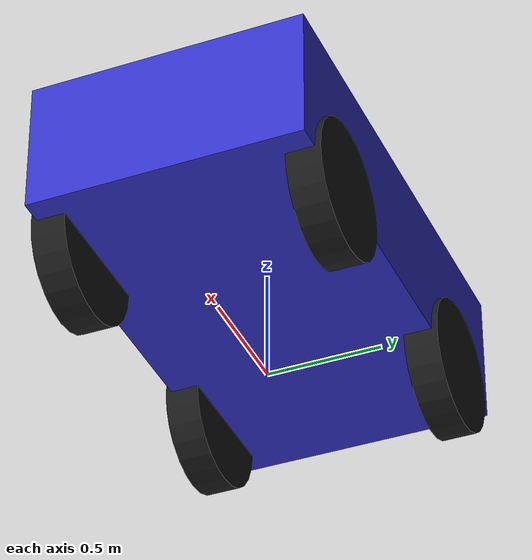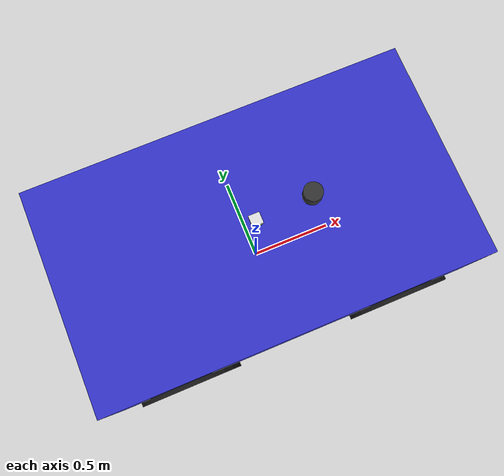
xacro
<?xml version="1.0"?>
<robot name="exia_ground" xmlns:xacro="http://www.ros.org/wiki/xacro">

  <xacro:arg name="config_path" default=""/>

  <xacro:arg name="lidar_horizontal_samples" default="360"/>
  <xacro:arg name="lidar_vertical_samples" default="16"/>
  <xacro:arg name="lidar_vertical_fov_min" default="-0.261799"/>
  <xacro:arg name="lidar_vertical_fov_max" default="0.261799"/>
  <xacro:arg name="lidar_range_min" default="1.0"/>
  <xacro:arg name="lidar_range_max" default="100.0"/>
  <xacro:arg name="lidar_update_rate" default="10"/>

  <link name="base_footprint"/>

  <link name="base_link">
    <visual>
      <origin xyz="0 0 0" rpy="0 0 0"/>
      <geometry>
        <box size="2.11 1.2 0.6"/>
      </geometry>
      <material name="blue">
        <color rgba="0.2 0.2 0.8 1"/>
      </material>
    </visual>

    <collision>
      <origin xyz="0 0 0" rpy="0 0 0"/>
      <geometry>
        <box size="2.11 1.2 0.6"/>
      </geometry>
    </collision>

    <inertial>
      <mass value="200.0"/>
      <origin xyz="0 0 0" rpy="0 0 0"/>
      <inertia ixx="30.0" ixy="0" ixz="0"
               iyy="80.2" iyz="0"
               izz="98.2"/>
    </inertial>
  </link>

  <joint name="base_joint" type="fixed">
    <parent link="base_footprint"/>
    <child link="base_link"/>
    <origin xyz="0 0 0.6" rpy="0 0 0"/>
  </joint>

  <link name="front_left_steer_link">
    <visual>
      <origin xyz="0 0 0" rpy="0 0 0"/>
      <geometry>
        <cylinder radius="0.05" length="0.08"/>
      </geometry>
      <material name="grey">
        <color rgba="0.5 0.5 0.5 1"/>
      </material>
    </visual>

    <collision>
      <origin xyz="0 0 0" rpy="0 0 0"/>
      <geometry>
        <cylinder radius="0.05" length="0.08"/>
      </geometry>
    </collision>

    <inertial>
      <mass value="2.0"/>
      <origin xyz="0 0 0" rpy="0 0 0"/>
      <inertia ixx="0.001" ixy="0" ixz="0"
               iyy="0.001" iyz="0"
               izz="0.001"/>
    </inertial>
  </link>

  <link name="front_right_steer_link">
    <visual>
      <origin xyz="0 0 0" rpy="0 0 0"/>
      <geometry>
        <cylinder radius="0.05" length="0.08"/>
      </geometry>
      <material name="grey">
        <color rgba="0.5 0.5 0.5 1"/>
      </material>
    </visual>

    <collision>
      <origin xyz="0 0 0" rpy="0 0 0"/>
      <geometry>
        <cylinder radius="0.05" length="0.08"/>
      </geometry>
    </collision>

    <inertial>
      <mass value="2.0"/>
      <origin xyz="0 0 0" rpy="0 0 0"/>
      <inertia ixx="0.001" ixy="0" ixz="0"
               iyy="0.001" iyz="0"
               izz="0.001"/>
    </inertial>
  </link>

  <joint name="front_left_steer_joint" type="revolute">
    <parent link="base_link"/>
    <child link="front_left_steer_link"/>
    <origin xyz="0.65 0.55 -0.3" rpy="0 0 0"/>
    <axis xyz="0 0 1"/>
    <limit lower="-0.6" upper="0.6" effort="2000.0" velocity="3.0"/>
    <dynamics damping="0.0" friction="0.0"/>
  </joint>

  <joint name="front_right_steer_joint" type="revolute">
    <parent link="base_link"/>
    <child link="front_right_steer_link"/>
    <origin xyz="0.65 -0.55 -0.3" rpy="0 0 0"/>
    <axis xyz="0 0 1"/>
    <limit lower="-0.6" upper="0.6" effort="2000.0" velocity="3.0"/>
    <dynamics damping="0.0" friction="0.0"/>
  </joint>

  <link name="front_left_wheel">
    <visual>
      <origin xyz="0 0 0" rpy="1.5708 0 0"/>
      <geometry>
        <cylinder radius="0.3" length="0.15"/>
      </geometry>
      <material name="black">
        <color rgba="0.1 0.1 0.1 1"/>
      </material>
    </visual>

    <collision>
      <origin xyz="0 0 0" rpy="1.5708 0 0"/>
      <geometry>
        <cylinder radius="0.3" length="0.15"/>
      </geometry>
    </collision>

    <inertial>
      <mass value="10.0"/>
      <origin xyz="0 0 0" rpy="1.5708 0 0"/>
      <inertia ixx="0.244" ixy="0" ixz="0"
               iyy="0.244" iyz="0"
               izz="0.45"/>
    </inertial>
  </link>

  <joint name="front_left_wheel_joint" type="continuous">
    <parent link="front_left_steer_link"/>
    <child link="front_left_wheel"/>
    <origin xyz="0 0 0" rpy="0 0 0"/>
    <axis xyz="0 1 0"/>
    <dynamics damping="0.1" friction="0.1"/>
  </joint>

  <link name="front_right_wheel">
    <visual>
      <origin xyz="0 0 0" rpy="1.5708 0 0"/>
      <geometry>
        <cylinder radius="0.3" length="0.15"/>
      </geometry>
      <material name="black">
        <color rgba="0.1 0.1 0.1 1"/>
      </material>
    </visual>

    <collision>
      <origin xyz="0 0 0" rpy="1.5708 0 0"/>
      <geometry>
        <cylinder radius="0.3" length="0.15"/>
      </geometry>
    </collision>

    <inertial>
      <mass value="10.0"/>
      <origin xyz="0 0 0" rpy="1.5708 0 0"/>
      <inertia ixx="0.244" ixy="0" ixz="0"
               iyy="0.244" iyz="0"
               izz="0.45"/>
    </inertial>
  </link>

  <joint name="front_right_wheel_joint" type="continuous">
    <parent link="front_right_steer_link"/>
    <child link="front_right_wheel"/>
    <origin xyz="0 0 0" rpy="0 0 0"/>
    <axis xyz="0 1 0"/>
    <dynamics damping="0.1" friction="0.1"/>
  </joint>

  <link name="rear_left_wheel">
    <visual>
      <origin xyz="0 0 0" rpy="1.5708 0 0"/>
      <geometry>
        <cylinder radius="0.3" length="0.15"/>
      </geometry>
      <material name="black">
        <color rgba="0.1 0.1 0.1 1"/>
      </material>
    </visual>

    <collision>
      <origin xyz="0 0 0" rpy="1.5708 0 0"/>
      <geometry>
        <cylinder radius="0.3" length="0.15"/>
      </geometry>
    </collision>

    <inertial>
      <mass value="10.0"/>
      <origin xyz="0 0 0" rpy="1.5708 0 0"/>
      <inertia ixx="0.244" ixy="0" ixz="0"
               iyy="0.244" iyz="0"
               izz="0.45"/>
    </inertial>
  </link>

  <joint name="rear_left_wheel_joint" type="continuous">
    <parent link="base_link"/>
    <child link="rear_left_wheel"/>
    <origin xyz="-0.65 0.55 -0.3" rpy="0 0 0"/>
    <axis xyz="0 1 0"/>
    <dynamics damping="0.01" friction="0.0"/>
  </joint>

  <link name="rear_right_wheel">
    <visual>
      <origin xyz="0 0 0" rpy="1.5708 0 0"/>
      <geometry>
        <cylinder radius="0.3" length="0.15"/>
      </geometry>
      <material name="black">
        <color rgba="0.1 0.1 0.1 1"/>
      </material>
    </visual>

    <collision>
      <origin xyz="0 0 0" rpy="1.5708 0 0"/>
      <geometry>
        <cylinder radius="0.3" length="0.15"/>
      </geometry>
    </collision>

    <inertial>
      <mass value="10.0"/>
      <origin xyz="0 0 0" rpy="1.5708 0 0"/>
      <inertia ixx="0.244" ixy="0" ixz="0"
               iyy="0.244" iyz="0"
               izz="0.45"/>
    </inertial>
  </link>

  <joint name="rear_right_wheel_joint" type="continuous">
    <parent link="base_link"/>
    <child link="rear_right_wheel"/>
    <origin xyz="-0.65 -0.55 -0.3" rpy="0 0 0"/>
    <axis xyz="0 1 0"/>
    <dynamics damping="0.01" friction="0.0"/>
  </joint>

  <link name="brake_actuator_link">
    <visual>
      <origin xyz="0 0 0" rpy="0 0 0"/>
      <geometry>
        <box size="0.15 0.2 0.1"/>
      </geometry>
      <material name="red">
        <color rgba="0.8 0.2 0.2 1"/>
      </material>
    </visual>

    <collision>
      <origin xyz="0 0 0" rpy="0 0 0"/>
      <geometry>
        <box size="0.15 0.2 0.1"/>
      </geometry>
    </collision>

    <inertial>
      <mass value="2.0"/>
      <origin xyz="0 0 0" rpy="0 0 0"/>
      <inertia ixx="0.001" ixy="0" ixz="0"
               iyy="0.001" iyz="0"
               izz="0.001"/>
    </inertial>
  </link>

  <joint name="brake_joint" type="revolute">
    <parent link="base_link"/>
    <child link="brake_actuator_link"/>
    <origin xyz="-0.5 0 -0.15" rpy="0 0 0"/>
    <axis xyz="0 1 0"/>
    <limit lower="0.0" upper="1.0" effort="2000.0" velocity="5.0"/>
    <dynamics damping="0.1" friction="0.0"/>
  </joint>

  <link name="imu_link">
    <visual>
      <origin xyz="0 0 0" rpy="0 0 0"/>
      <geometry>
        <box size="0.05 0.05 0.02"/>
      </geometry>
      <material name="green">
        <color rgba="0.2 0.8 0.2 1"/>
      </material>
    </visual>

    <collision>
      <origin xyz="0 0 0" rpy="0 0 0"/>
      <geometry>
        <box size="0.05 0.05 0.02"/>
      </geometry>
    </collision>

    <inertial>
      <mass value="0.05"/>
      <origin xyz="0 0 0" rpy="0 0 0"/>
      <inertia ixx="0.00001" ixy="0" ixz="0"
               iyy="0.00001" iyz="0"
               izz="0.00001"/>
    </inertial>
  </link>

  <joint name="imu_joint" type="fixed">
    <parent link="base_link"/>
    <child link="imu_link"/>
    <origin xyz="0 0 0.31" rpy="0 0 0"/>
  </joint>

  <link name="lidar_link">
    <visual>
      <origin xyz="0 0 0" rpy="0 0 0"/>
      <geometry>
        <cylinder radius="0.05" length="0.07"/>
      </geometry>
      <material name="dark_grey">
        <color rgba="0.2 0.2 0.2 1"/>
      </material>
    </visual>

    <collision>
      <origin xyz="0 0 0" rpy="0 0 0"/>
      <geometry>
        <cylinder radius="0.05" length="0.07"/>
      </geometry>
    </collision>

    <inertial>
      <mass value="0.83"/>
      <origin xyz="0 0 0" rpy="0 0 0"/>
      <inertia ixx="0.0005" ixy="0" ixz="0"
               iyy="0.0005" iyz="0"
               izz="0.001"/>
    </inertial>
  </link>

  <joint name="lidar_joint" type="fixed">
    <parent link="base_link"/>
    <child link="lidar_link"/>
    <origin xyz="0.3 0 0.42" rpy="0 0 0"/>
  </joint>

  <link name="gps_link">
    <visual>
      <origin xyz="0 0 0" rpy="0 0 0"/>
      <geometry>
        <box size="0.06 0.06 0.02"/>
      </geometry>
      <material name="white">
        <color rgba="0.9 0.9 0.9 1"/>
      </material>
    </visual>

    <collision>
      <origin xyz="0 0 0" rpy="0 0 0"/>
      <geometry>
        <box size="0.06 0.06 0.02"/>
      </geometry>
    </collision>

    <inertial>
      <mass value="0.1"/>
      <origin xyz="0 0 0" rpy="0 0 0"/>
      <inertia ixx="0.00001" ixy="0" ixz="0"
               iyy="0.00001" iyz="0"
               izz="0.00001"/>
    </inertial>
  </link>

  <joint name="gps_joint" type="fixed">
    <parent link="base_link"/>
    <child link="gps_link"/>
    <origin xyz="0 0 0.35" rpy="0 0 0"/>
  </joint>

  <gazebo reference="front_left_wheel">
    <collision>
      <surface>
        <friction>
          <ode>
            <mu>1.5</mu>
            <mu2>1.5</mu2>
          </ode>
        </friction>
      </surface>
    </collision>
  </gazebo>

  <gazebo reference="front_right_wheel">
    <collision>
      <surface>
        <friction>
          <ode>
            <mu>1.5</mu>
            <mu2>1.5</mu2>
          </ode>
        </friction>
      </surface>
    </collision>
  </gazebo>

  <gazebo reference="rear_left_wheel">
    <collision>
      <surface>
        <friction>
          <ode>
            <mu>1.5</mu>
            <mu2>1.5</mu2>
          </ode>
        </friction>
      </surface>
    </collision>
  </gazebo>

  <gazebo reference="rear_right_wheel">
    <collision>
      <surface>
        <friction>
          <ode>
            <mu>1.5</mu>
            <mu2>1.5</mu2>
          </ode>
        </friction>
      </surface>
    </collision>
  </gazebo>

  <gazebo reference="imu_link">
    <sensor name="imu_sensor" type="imu">
      <always_on>true</always_on>
      <update_rate>200</update_rate>
      <topic>imu</topic>
      <imu>
        <angular_velocity>
          <x><noise type="gaussian"><mean>0.0</mean><stddev>0.0002</stddev></noise></x>
          <y><noise type="gaussian"><mean>0.0</mean><stddev>0.0002</stddev></noise></y>
          <z><noise type="gaussian"><mean>0.0</mean><stddev>0.0002</stddev></noise></z>
        </angular_velocity>
        <linear_acceleration>
          <x><noise type="gaussian"><mean>0.0</mean><stddev>0.017</stddev></noise></x>
          <y><noise type="gaussian"><mean>0.0</mean><stddev>0.017</stddev></noise></y>
          <z><noise type="gaussian"><mean>0.0</mean><stddev>0.017</stddev></noise></z>
        </linear_acceleration>
      </imu>
    </sensor>
  </gazebo>

  <gazebo reference="lidar_link">
    <sensor name="lidar_3d" type="gpu_lidar">
      <always_on>true</always_on>
      <update_rate>$(arg lidar_update_rate)</update_rate>
      <topic>lidar_3d</topic>
      <gz_frame_id>lidar_link</gz_frame_id>
      <lidar>
        <scan>
          <horizontal>
            <samples>$(arg lidar_horizontal_samples)</samples>
            <resolution>1</resolution>
            <min_angle>-3.14159</min_angle>
            <max_angle>3.14159</max_angle>
          </horizontal>
          <vertical>
            <samples>$(arg lidar_vertical_samples)</samples>
            <resolution>1</resolution>
            <min_angle>$(arg lidar_vertical_fov_min)</min_angle>
            <max_angle>$(arg lidar_vertical_fov_max)</max_angle>
          </vertical>
        </scan>
        <range>
          <min>$(arg lidar_range_min)</min>
          <max>$(arg lidar_range_max)</max>
        </range>
        <noise>
          <type>gaussian</type>
          <mean>0.0</mean>
          <stddev>0.01</stddev>
        </noise>
      </lidar>
      <visualize>true</visualize>
    </sensor>
  </gazebo>

  <gazebo reference="gps_link">
    <sensor name="navsat_sensor" type="navsat">
      <always_on>true</always_on>
      <update_rate>10</update_rate>
      <topic>navsat</topic>
      <gz_frame_id>gps_link</gz_frame_id>
      <navsat>
        <position_sensing>
          <horizontal>
            <noise type="gaussian">
              <mean>0.0</mean>
              <stddev>0.5</stddev>
            </noise>
          </horizontal>
          <vertical>
            <noise type="gaussian">
              <mean>0.0</mean>
              <stddev>1.0</stddev>
            </noise>
          </vertical>
        </position_sensing>
        <velocity_sensing>
          <horizontal>
            <noise type="gaussian">
              <mean>0.0</mean>
              <stddev>0.1</stddev>
            </noise>
          </horizontal>
          <vertical>
            <noise type="gaussian">
              <mean>0.0</mean>
              <stddev>0.1</stddev>
            </noise>
          </vertical>
        </velocity_sensing>
      </navsat>
    </sensor>
  </gazebo>

  <ros2_control name="GazeboSimSystem" type="system">
    <hardware>
      <plugin>gz_ros2_control/GazeboSimSystem</plugin>
    </hardware>

    <joint name="front_left_steer_joint">
      <command_interface name="position"/>
      <state_interface name="position"/>
      <state_interface name="velocity"/>
    </joint>
    <joint name="front_right_steer_joint">
      <command_interface name="position"/>
      <state_interface name="position"/>
      <state_interface name="velocity"/>
    </joint>

    <joint name="rear_left_wheel_joint">
      <command_interface name="velocity"/>
      <state_interface name="position"/>
      <state_interface name="velocity"/>
    </joint>
    <joint name="rear_right_wheel_joint">
      <command_interface name="velocity"/>
      <state_interface name="position"/>
      <state_interface name="velocity"/>
    </joint>

    <joint name="brake_joint">
      <command_interface name="position"/>
      <state_interface name="position"/>
      <state_interface name="velocity"/>
    </joint>
  </ros2_control>

  <gazebo>
    <plugin filename="gz_ros2_control-system" name="gz_ros2_control::GazeboSimROS2ControlPlugin">
      <robot_param>robot_description</robot_param>
      <robot_param_node>robot_state_publisher</robot_param_node>
      <parameters>$(arg config_path)</parameters>
    </plugin>
  </gazebo>

</robot>
